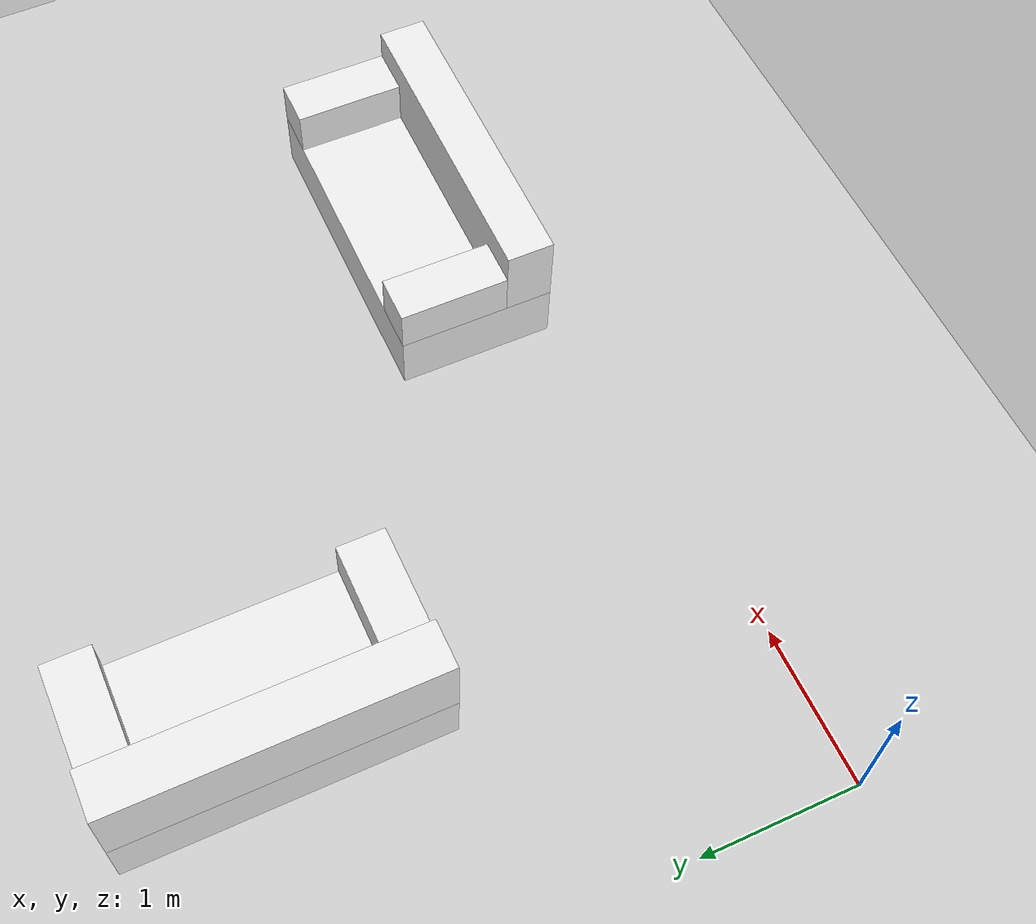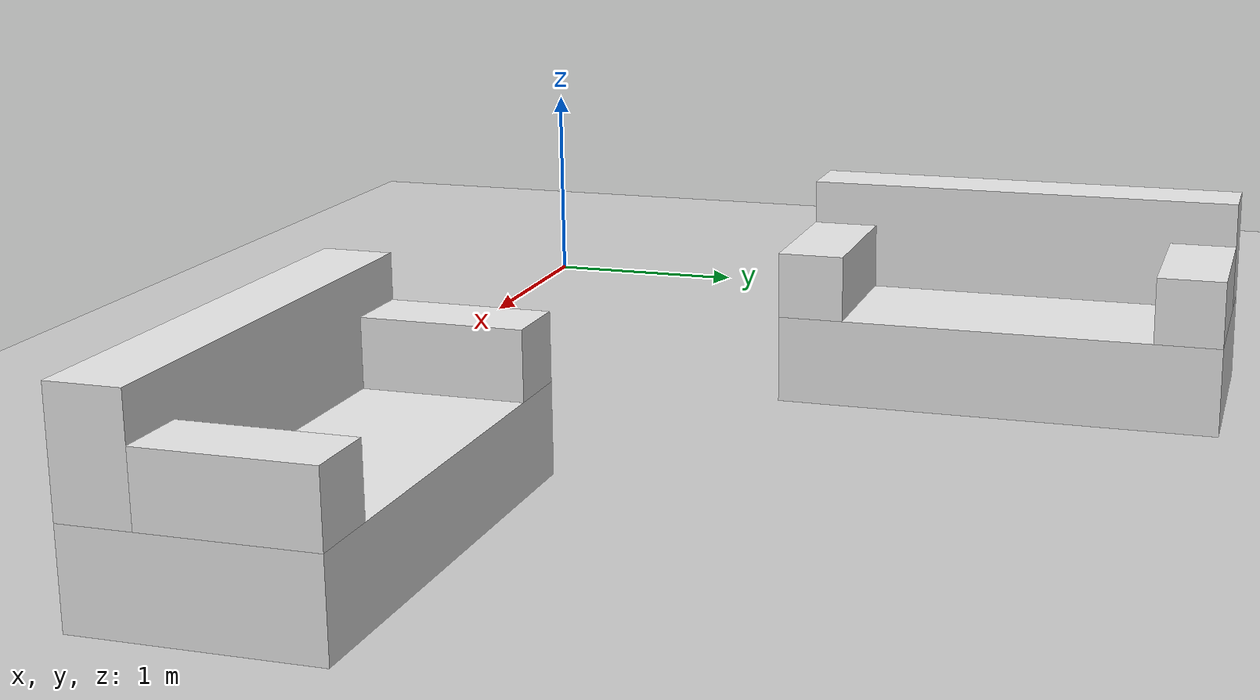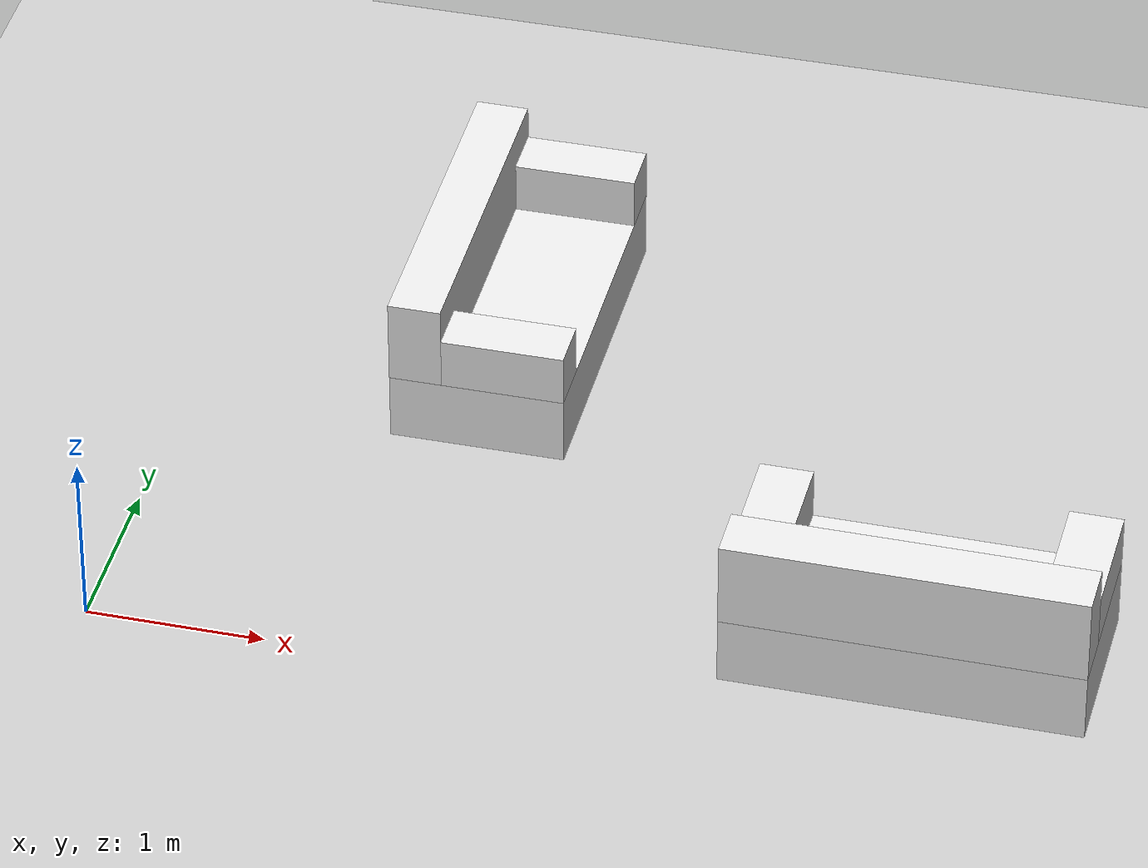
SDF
<sdf version="1.6">
 <world name="default">
  <model name="ground_plane">
   <static>1</static>
   <link name="link">
    <collision name="collision">
     <geometry><plane><normal>0 0 1</normal><size>100 100</size></plane></geometry>
     <surface><friction><ode><mu>100</mu><mu2>50</mu2></ode></friction></surface>
    </collision>
    <visual name="visual">
     <cast_shadows>0</cast_shadows>
     <geometry><plane><normal>0 0 1</normal><size>100 100</size></plane></geometry>
     <material>
      <script><uri>file://media/materials/scripts/gazebo.material</uri><name>Gazebo/Grey</name></script>
     </material>
    </visual>
   </link>
  </model>
  <model name="sofa">
   <link name="link_5">
    <pose>0.0125 0 -0.2875 0 -0 0</pose>
    <inertial>
     <mass>1</mass>
     <inertia>
      <ixx>0.166667</ixx>
      <ixy>0</ixy>
      <ixz>0</ixz>
      <iyy>0.166667</iyy>
      <iyz>0</iyz>
      <izz>0.166667</izz>
     </inertia>
    </inertial>
    <visual name="visual">
     <geometry><box><size>1 2 0.4</size></box></geometry>
     <material>
      <lighting>1</lighting>
      <script><uri>file://media/materials/scripts/gazebo.material</uri><name>Gazebo/White</name></script>
      <shader type="pixel"><normal_map>__default__</normal_map></shader>
      <ambient>0.2 0.2 0.2 1</ambient>
      <diffuse>0.3 0.3 0.3 1</diffuse>
      <specular>0 0 0 1</specular>
      <emissive>0 0 0 1</emissive>
     </material>
    </visual>
    <collision name="collision">
     <geometry><box><size>1 2 0.4</size></box></geometry>
     <surface>
      <friction>
       <ode><mu>1</mu><mu2>1</mu2><fdir1>0 0 0</fdir1><slip1>0</slip1><slip2>0</slip2></ode>
       <torsional>
        <coefficient>1</coefficient>
        <patch_radius>0</patch_radius>
        <surface_radius>0</surface_radius>
        <use_patch_radius>1</use_patch_radius>
        <ode><slip>0</slip></ode>
       </torsional>
      </friction>
      <bounce><restitution_coefficient>0</restitution_coefficient><threshold>1e+06</threshold></bounce>
      <contact>
       <collide_without_contact>0</collide_without_contact>
       <collide_without_contact_bitmask>1</collide_without_contact_bitmask>
       <collide_bitmask>1</collide_bitmask>
       <ode>
        <soft_cfm>0</soft_cfm>
        <soft_erp>0.2</soft_erp>
        <kp>1e+13</kp>
        <kd>1</kd>
        <max_vel>0.01</max_vel>
        <min_depth>0</min_depth>
       </ode>
       <bullet>
        <split_impulse>1</split_impulse>
        <split_impulse_penetration_threshold>-0.01</split_impulse_penetration_threshold>
        <soft_cfm>0</soft_cfm>
        <soft_erp>0.2</soft_erp>
        <kp>1e+13</kp>
        <kd>1</kd>
       </bullet>
      </contact>
     </surface>
    </collision>
   </link>
   <link name="link_5_clone">
    <pose>-0.3375 0 0.1625 0 -0 0</pose>
    <inertial>
     <mass>1</mass>
     <inertia>
      <ixx>0.166667</ixx>
      <ixy>0</ixy>
      <ixz>0</ixz>
      <iyy>0.166667</iyy>
      <iyz>0</iyz>
      <izz>0.166667</izz>
     </inertia>
    </inertial>
    <visual name="visual">
     <geometry><box><size>0.3 2 0.5</size></box></geometry>
     <material>
      <lighting>1</lighting>
      <script><uri>file://media/materials/scripts/gazebo.material</uri><name>Gazebo/White</name></script>
      <shader type="pixel"><normal_map>__default__</normal_map></shader>
      <ambient>0.2 0.2 0.2 1</ambient>
      <diffuse>0.3 0.3 0.3 1</diffuse>
      <specular>0 0 0 1</specular>
      <emissive>0 0 0 1</emissive>
     </material>
    </visual>
    <collision name="collision">
     <geometry><box><size>0.3 2 0.5</size></box></geometry>
     <surface>
      <friction>
       <ode><mu>1</mu><mu2>1</mu2><fdir1>0 0 0</fdir1><slip1>0</slip1><slip2>0</slip2></ode>
       <torsional>
        <coefficient>1</coefficient>
        <patch_radius>0</patch_radius>
        <surface_radius>0</surface_radius>
        <use_patch_radius>1</use_patch_radius>
        <ode><slip>0</slip></ode>
       </torsional>
      </friction>
      <bounce><restitution_coefficient>0</restitution_coefficient><threshold>1e+06</threshold></bounce>
      <contact>
       <collide_without_contact>0</collide_without_contact>
       <collide_without_contact_bitmask>1</collide_without_contact_bitmask>
       <collide_bitmask>1</collide_bitmask>
       <ode>
        <soft_cfm>0</soft_cfm>
        <soft_erp>0.2</soft_erp>
        <kp>1e+13</kp>
        <kd>1</kd>
        <max_vel>0.01</max_vel>
        <min_depth>0</min_depth>
       </ode>
       <bullet>
        <split_impulse>1</split_impulse>
        <split_impulse_penetration_threshold>-0.01</split_impulse_penetration_threshold>
        <soft_cfm>0</soft_cfm>
        <soft_erp>0.2</soft_erp>
        <kp>1e+13</kp>
        <kd>1</kd>
       </bullet>
      </contact>
     </surface>
    </collision>
   </link>
   <link name="link_5_clone_clone">
    <pose>0.1625 -0.85 0.0625 0 -0 0</pose>
    <inertial>
     <mass>1</mass>
     <inertia>
      <ixx>0.166667</ixx>
      <ixy>0</ixy>
      <ixz>0</ixz>
      <iyy>0.166667</iyy>
      <iyz>0</iyz>
      <izz>0.166667</izz>
     </inertia>
    </inertial>
    <visual name="visual">
     <geometry><box><size>0.7 0.3 0.3</size></box></geometry>
     <material>
      <lighting>1</lighting>
      <script><uri>file://media/materials/scripts/gazebo.material</uri><name>Gazebo/White</name></script>
      <shader type="pixel"><normal_map>__default__</normal_map></shader>
      <ambient>0.2 0.2 0.2 1</ambient>
      <diffuse>0.3 0.3 0.3 1</diffuse>
      <specular>0 0 0 1</specular>
      <emissive>0 0 0 1</emissive>
     </material>
    </visual>
    <collision name="collision">
     <geometry><box><size>0.7 0.3 0.3</size></box></geometry>
     <surface>
      <friction>
       <ode><mu>1</mu><mu2>1</mu2><fdir1>0 0 0</fdir1><slip1>0</slip1><slip2>0</slip2></ode>
       <torsional>
        <coefficient>1</coefficient>
        <patch_radius>0</patch_radius>
        <surface_radius>0</surface_radius>
        <use_patch_radius>1</use_patch_radius>
        <ode><slip>0</slip></ode>
       </torsional>
      </friction>
      <bounce><restitution_coefficient>0</restitution_coefficient><threshold>1e+06</threshold></bounce>
      <contact>
       <collide_without_contact>0</collide_without_contact>
       <collide_without_contact_bitmask>1</collide_without_contact_bitmask>
       <collide_bitmask>1</collide_bitmask>
       <ode>
        <soft_cfm>0</soft_cfm>
        <soft_erp>0.2</soft_erp>
        <kp>1e+13</kp>
        <kd>1</kd>
        <max_vel>0.01</max_vel>
        <min_depth>0</min_depth>
       </ode>
       <bullet>
        <split_impulse>1</split_impulse>
        <split_impulse_penetration_threshold>-0.01</split_impulse_penetration_threshold>
        <soft_cfm>0</soft_cfm>
        <soft_erp>0.2</soft_erp>
        <kp>1e+13</kp>
        <kd>1</kd>
       </bullet>
      </contact>
     </surface>
    </collision>
   </link>
   <link name="link_5_clone_clone_clone">
    <pose>0.1625 0.85 0.0625 0 -0 0</pose>
    <inertial>
     <mass>1</mass>
     <inertia>
      <ixx>0.166667</ixx>
      <ixy>0</ixy>
      <ixz>0</ixz>
      <iyy>0.166667</iyy>
      <iyz>0</iyz>
      <izz>0.166667</izz>
     </inertia>
    </inertial>
    <visual name="visual">
     <geometry><box><size>0.7 0.3 0.3</size></box></geometry>
     <material>
      <lighting>1</lighting>
      <script><uri>file://media/materials/scripts/gazebo.material</uri><name>Gazebo/White</name></script>
      <shader type="pixel"><normal_map>__default__</normal_map></shader>
      <ambient>0.2 0.2 0.2 1</ambient>
      <diffuse>0.3 0.3 0.3 1</diffuse>
      <specular>0 0 0 1</specular>
      <emissive>0 0 0 1</emissive>
     </material>
    </visual>
    <collision name="collision">
     <geometry><box><size>0.7 0.3 0.3</size></box></geometry>
     <surface>
      <friction>
       <ode><mu>1</mu><mu2>1</mu2><fdir1>0 0 0</fdir1><slip1>0</slip1><slip2>0</slip2></ode>
       <torsional>
        <coefficient>1</coefficient>
        <patch_radius>0</patch_radius>
        <surface_radius>0</surface_radius>
        <use_patch_radius>1</use_patch_radius>
        <ode><slip>0</slip></ode>
       </torsional>
      </friction>
      <bounce><restitution_coefficient>0</restitution_coefficient><threshold>1e+06</threshold></bounce>
      <contact>
       <collide_without_contact>0</collide_without_contact>
       <collide_without_contact_bitmask>1</collide_without_contact_bitmask>
       <collide_bitmask>1</collide_bitmask>
       <ode>
        <soft_cfm>0</soft_cfm>
        <soft_erp>0.2</soft_erp>
        <kp>1e+13</kp>
        <kd>1</kd>
        <max_vel>0.01</max_vel>
        <min_depth>0</min_depth>
       </ode>
       <bullet>
        <split_impulse>1</split_impulse>
        <split_impulse_penetration_threshold>-0.01</split_impulse_penetration_threshold>
        <soft_cfm>0</soft_cfm>
        <soft_erp>0.2</soft_erp>
        <kp>1e+13</kp>
        <kd>1</kd>
       </bullet>
      </contact>
     </surface>
    </collision>
   </link>
   <joint name="link_5_JOINT_4" type="fixed">
    <parent>link_5</parent>
    <child>link_5_clone</child>
    <physics>
     <ode><limit><cfm>0</cfm><erp>0.2</erp></limit><suspension><cfm>0</cfm><erp>0.2</erp></suspension></ode>
    </physics>
   </joint>
   <joint name="link_5_JOINT_5" type="fixed">
    <parent>link_5</parent>
    <child>link_5_clone_clone</child>
    <physics>
     <ode><limit><cfm>0</cfm><erp>0.2</erp></limit><suspension><cfm>0</cfm><erp>0.2</erp></suspension></ode>
    </physics>
   </joint>
   <joint name="link_5_JOINT_6" type="fixed">
    <parent>link_5</parent>
    <child>link_5_clone_clone_clone</child>
    <physics>
     <ode><limit><cfm>0</cfm><erp>0.2</erp></limit><suspension><cfm>0</cfm><erp>0.2</erp></suspension></ode>
    </physics>
   </joint>
   <static>1</static>
   <pose>1.68846 2.88667 0.488007 0 -0 0</pose>
  </model>
  <model name="sofa_clone">
   <link name="link_5">
    <pose>0.0125 0 -0.2875 0 -0 0</pose>
    <inertial>
     <mass>1</mass>
     <inertia>
      <ixx>0.166667</ixx>
      <ixy>0</ixy>
      <ixz>0</ixz>
      <iyy>0.166667</iyy>
      <iyz>0</iyz>
      <izz>0.166667</izz>
     </inertia>
    </inertial>
    <visual name="visual">
     <geometry><box><size>1 2 0.4</size></box></geometry>
     <material>
      <lighting>1</lighting>
      <script><uri>file://media/materials/scripts/gazebo.material</uri><name>Gazebo/White</name></script>
      <shader type="pixel"><normal_map>__default__</normal_map></shader>
      <ambient>0.2 0.2 0.2 1</ambient>
      <diffuse>0.3 0.3 0.3 1</diffuse>
      <specular>0 0 0 1</specular>
      <emissive>0 0 0 1</emissive>
     </material>
    </visual>
    <collision name="collision">
     <geometry><box><size>1 2 0.4</size></box></geometry>
     <surface>
      <friction>
       <ode><mu>1</mu><mu2>1</mu2><fdir1>0 0 0</fdir1><slip1>0</slip1><slip2>0</slip2></ode>
       <torsional>
        <coefficient>1</coefficient>
        <patch_radius>0</patch_radius>
        <surface_radius>0</surface_radius>
        <use_patch_radius>1</use_patch_radius>
        <ode><slip>0</slip></ode>
       </torsional>
      </friction>
      <bounce><restitution_coefficient>0</restitution_coefficient><threshold>1e+06</threshold></bounce>
      <contact>
       <collide_without_contact>0</collide_without_contact>
       <collide_without_contact_bitmask>1</collide_without_contact_bitmask>
       <collide_bitmask>1</collide_bitmask>
       <ode>
        <soft_cfm>0</soft_cfm>
        <soft_erp>0.2</soft_erp>
        <kp>1e+13</kp>
        <kd>1</kd>
        <max_vel>0.01</max_vel>
        <min_depth>0</min_depth>
       </ode>
       <bullet>
        <split_impulse>1</split_impulse>
        <split_impulse_penetration_threshold>-0.01</split_impulse_penetration_threshold>
        <soft_cfm>0</soft_cfm>
        <soft_erp>0.2</soft_erp>
        <kp>1e+13</kp>
        <kd>1</kd>
       </bullet>
      </contact>
     </surface>
    </collision>
   </link>
   <link name="link_5_clone">
    <pose>-0.3375 0 0.1625 0 -0 0</pose>
    <inertial>
     <mass>1</mass>
     <inertia>
      <ixx>0.166667</ixx>
      <ixy>0</ixy>
      <ixz>0</ixz>
      <iyy>0.166667</iyy>
      <iyz>0</iyz>
      <izz>0.166667</izz>
     </inertia>
    </inertial>
    <visual name="visual">
     <geometry><box><size>0.3 2 0.5</size></box></geometry>
     <material>
      <lighting>1</lighting>
      <script><uri>file://media/materials/scripts/gazebo.material</uri><name>Gazebo/White</name></script>
      <shader type="pixel"><normal_map>__default__</normal_map></shader>
      <ambient>0.2 0.2 0.2 1</ambient>
      <diffuse>0.3 0.3 0.3 1</diffuse>
      <specular>0 0 0 1</specular>
      <emissive>0 0 0 1</emissive>
     </material>
    </visual>
    <collision name="collision">
     <geometry><box><size>0.3 2 0.5</size></box></geometry>
     <surface>
      <friction>
       <ode><mu>1</mu><mu2>1</mu2><fdir1>0 0 0</fdir1><slip1>0</slip1><slip2>0</slip2></ode>
       <torsional>
        <coefficient>1</coefficient>
        <patch_radius>0</patch_radius>
        <surface_radius>0</surface_radius>
        <use_patch_radius>1</use_patch_radius>
        <ode><slip>0</slip></ode>
       </torsional>
      </friction>
      <bounce><restitution_coefficient>0</restitution_coefficient><threshold>1e+06</threshold></bounce>
      <contact>
       <collide_without_contact>0</collide_without_contact>
       <collide_without_contact_bitmask>1</collide_without_contact_bitmask>
       <collide_bitmask>1</collide_bitmask>
       <ode>
        <soft_cfm>0</soft_cfm>
        <soft_erp>0.2</soft_erp>
        <kp>1e+13</kp>
        <kd>1</kd>
        <max_vel>0.01</max_vel>
        <min_depth>0</min_depth>
       </ode>
       <bullet>
        <split_impulse>1</split_impulse>
        <split_impulse_penetration_threshold>-0.01</split_impulse_penetration_threshold>
        <soft_cfm>0</soft_cfm>
        <soft_erp>0.2</soft_erp>
        <kp>1e+13</kp>
        <kd>1</kd>
       </bullet>
      </contact>
     </surface>
    </collision>
   </link>
   <link name="link_5_clone_clone">
    <pose>0.1625 -0.85 0.0625 0 -0 0</pose>
    <inertial>
     <mass>1</mass>
     <inertia>
      <ixx>0.166667</ixx>
      <ixy>0</ixy>
      <ixz>0</ixz>
      <iyy>0.166667</iyy>
      <iyz>0</iyz>
      <izz>0.166667</izz>
     </inertia>
    </inertial>
    <visual name="visual">
     <geometry><box><size>0.7 0.3 0.3</size></box></geometry>
     <material>
      <lighting>1</lighting>
      <script><uri>file://media/materials/scripts/gazebo.material</uri><name>Gazebo/White</name></script>
      <shader type="pixel"><normal_map>__default__</normal_map></shader>
      <ambient>0.2 0.2 0.2 1</ambient>
      <diffuse>0.3 0.3 0.3 1</diffuse>
      <specular>0 0 0 1</specular>
      <emissive>0 0 0 1</emissive>
     </material>
    </visual>
    <collision name="collision">
     <geometry><box><size>0.7 0.3 0.3</size></box></geometry>
     <surface>
      <friction>
       <ode><mu>1</mu><mu2>1</mu2><fdir1>0 0 0</fdir1><slip1>0</slip1><slip2>0</slip2></ode>
       <torsional>
        <coefficient>1</coefficient>
        <patch_radius>0</patch_radius>
        <surface_radius>0</surface_radius>
        <use_patch_radius>1</use_patch_radius>
        <ode><slip>0</slip></ode>
       </torsional>
      </friction>
      <bounce><restitution_coefficient>0</restitution_coefficient><threshold>1e+06</threshold></bounce>
      <contact>
       <collide_without_contact>0</collide_without_contact>
       <collide_without_contact_bitmask>1</collide_without_contact_bitmask>
       <collide_bitmask>1</collide_bitmask>
       <ode>
        <soft_cfm>0</soft_cfm>
        <soft_erp>0.2</soft_erp>
        <kp>1e+13</kp>
        <kd>1</kd>
        <max_vel>0.01</max_vel>
        <min_depth>0</min_depth>
       </ode>
       <bullet>
        <split_impulse>1</split_impulse>
        <split_impulse_penetration_threshold>-0.01</split_impulse_penetration_threshold>
        <soft_cfm>0</soft_cfm>
        <soft_erp>0.2</soft_erp>
        <kp>1e+13</kp>
        <kd>1</kd>
       </bullet>
      </contact>
     </surface>
    </collision>
   </link>
   <link name="link_5_clone_clone_clone">
    <pose>0.1625 0.85 0.0625 0 -0 0</pose>
    <inertial>
     <mass>1</mass>
     <inertia>
      <ixx>0.166667</ixx>
      <ixy>0</ixy>
      <ixz>0</ixz>
      <iyy>0.166667</iyy>
      <iyz>0</iyz>
      <izz>0.166667</izz>
     </inertia>
    </inertial>
    <visual name="visual">
     <geometry><box><size>0.7 0.3 0.3</size></box></geometry>
     <material>
      <lighting>1</lighting>
      <script><uri>file://media/materials/scripts/gazebo.material</uri><name>Gazebo/White</name></script>
      <shader type="pixel"><normal_map>__default__</normal_map></shader>
      <ambient>0.2 0.2 0.2 1</ambient>
      <diffuse>0.3 0.3 0.3 1</diffuse>
      <specular>0 0 0 1</specular>
      <emissive>0 0 0 1</emissive>
     </material>
    </visual>
    <collision name="collision">
     <geometry><box><size>0.7 0.3 0.3</size></box></geometry>
     <surface>
      <friction>
       <ode><mu>1</mu><mu2>1</mu2><fdir1>0 0 0</fdir1><slip1>0</slip1><slip2>0</slip2></ode>
       <torsional>
        <coefficient>1</coefficient>
        <patch_radius>0</patch_radius>
        <surface_radius>0</surface_radius>
        <use_patch_radius>1</use_patch_radius>
        <ode><slip>0</slip></ode>
       </torsional>
      </friction>
      <bounce><restitution_coefficient>0</restitution_coefficient><threshold>1e+06</threshold></bounce>
      <contact>
       <collide_without_contact>0</collide_without_contact>
       <collide_without_contact_bitmask>1</collide_without_contact_bitmask>
       <collide_bitmask>1</collide_bitmask>
       <ode>
        <soft_cfm>0</soft_cfm>
        <soft_erp>0.2</soft_erp>
        <kp>1e+13</kp>
        <kd>1</kd>
        <max_vel>0.01</max_vel>
        <min_depth>0</min_depth>
       </ode>
       <bullet>
        <split_impulse>1</split_impulse>
        <split_impulse_penetration_threshold>-0.01</split_impulse_penetration_threshold>
        <soft_cfm>0</soft_cfm>
        <soft_erp>0.2</soft_erp>
        <kp>1e+13</kp>
        <kd>1</kd>
       </bullet>
      </contact>
     </surface>
    </collision>
   </link>
   <joint name="link_5_JOINT_4" type="fixed">
    <parent>link_5</parent>
    <child>link_5_clone</child>
    <physics>
     <ode><limit><cfm>0</cfm><erp>0.2</erp></limit><suspension><cfm>0</cfm><erp>0.2</erp></suspension></ode>
    </physics>
   </joint>
   <joint name="link_5_JOINT_5" type="fixed">
    <parent>link_5</parent>
    <child>link_5_clone_clone</child>
    <physics>
     <ode><limit><cfm>0</cfm><erp>0.2</erp></limit><suspension><cfm>0</cfm><erp>0.2</erp></suspension></ode>
    </physics>
   </joint>
   <joint name="link_5_JOINT_6" type="fixed">
    <parent>link_5</parent>
    <child>link_5_clone_clone_clone</child>
    <physics>
     <ode><limit><cfm>0</cfm><erp>0.2</erp></limit><suspension><cfm>0</cfm><erp>0.2</erp></suspension></ode>
    </physics>
   </joint>
   <static>1</static>
   <pose>4.44797 0.735849 0.488007 0 -0 1.56484</pose>
  </model>
 </world>
</sdf>
